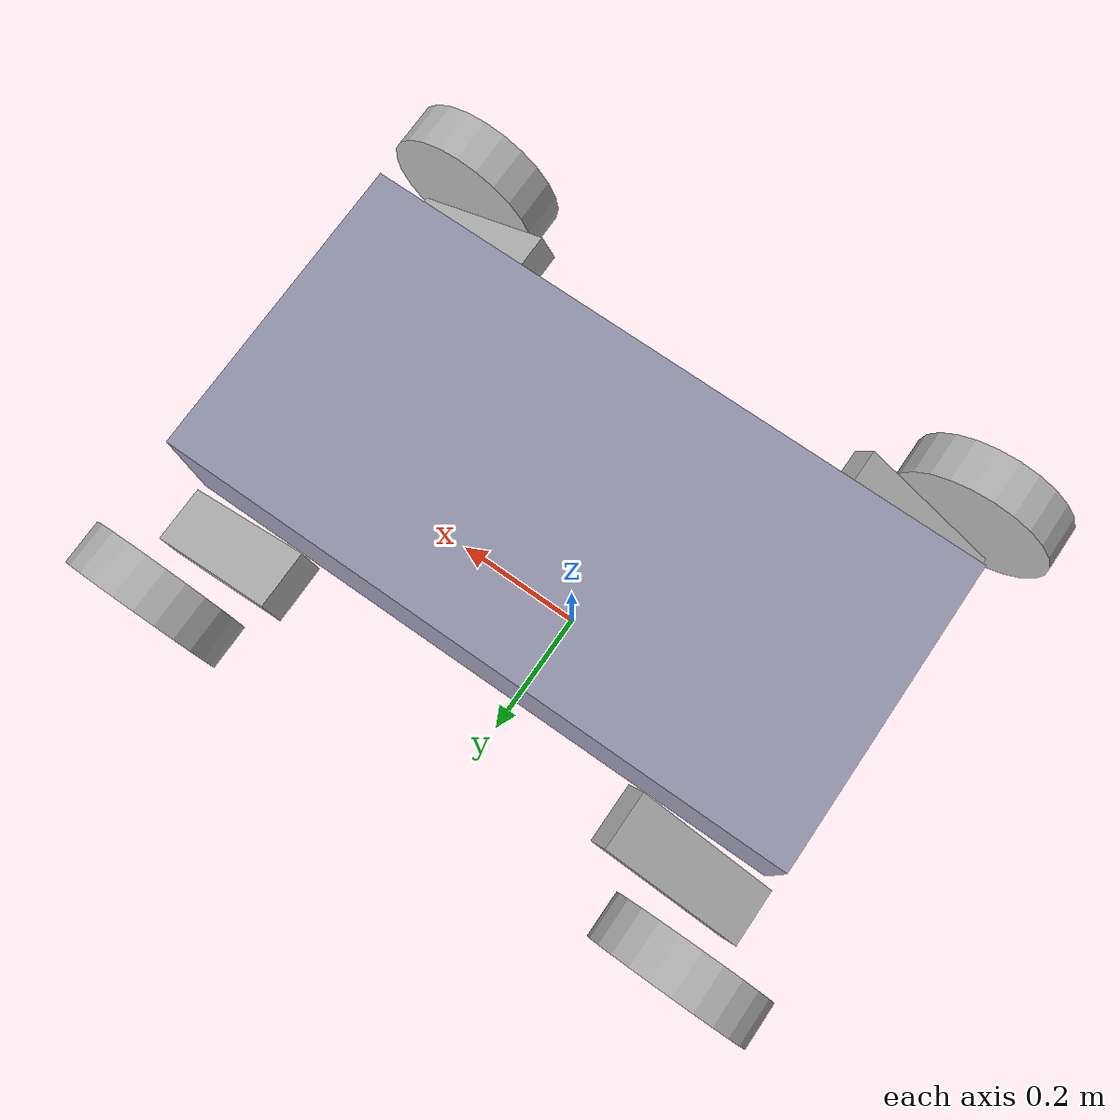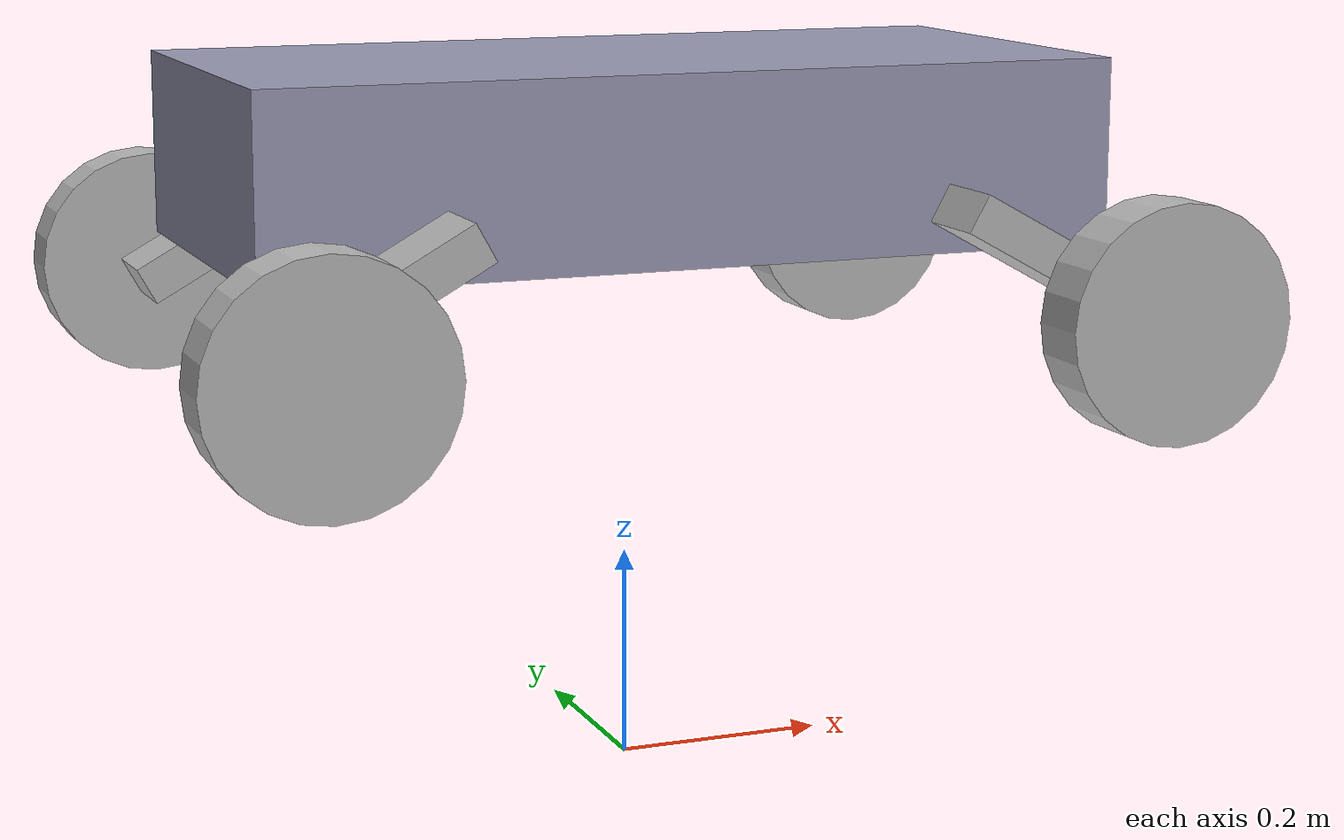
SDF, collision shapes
<?xml version="1.0" encoding="UTF-8"?>
<sdf version='1.9'>
  <model name='ELM4_chassis'>
    <pose>0 0 .5 0 0 0</pose>
    <self_collide>false</self_collide>
    <static>false</static>
    <link name="ELM4_chassis/Base">
      <inertial>
        <mass>18.71</mass>
        <inertia>
          <ixx>0.3986</ixx>
          <ixy>0</ixy>
          <ixz>0</ixz>
          <iyy>1.092</iyy>
          <iyz>0</iyz>
          <izz>1.337</izz>
        </inertia>
      </inertial>
      <gravity>true</gravity>
      <velocity_decay/>
      <collision name="ELM4_chassis/Base_Collision">
        <pose>0 0 .0875 0 0 0</pose>
        <geometry>
          <box>
            <size>0.8 0.389 0.171</size>
          </box>
        </geometry>
        <surface>
          <contact>
            <ode>
              <min_depth>0.001</min_depth>
              <max_vel>0</max_vel>
            </ode>
          </contact>
        </surface>
      </collision>
      <visual name="ELM4_chassis/BaseMetal">
        <pose>0 0 0 0 0 0</pose>
        <geometry>
          <mesh>
            <scale>1 1 1</scale>
            <uri>model://ELM4_chassis/meshes/BaseMetal.dae</uri>
          </mesh>
        </geometry>
      </visual>
      <visual name="ELM4_chassis/BaseRubber">
        <pose>0 0 0 0 0 0</pose>
        <geometry>
          <mesh>
            <scale>1 1 1</scale>
            <uri>model://ELM4_chassis/meshes/BaseRubber.dae</uri>
          </mesh>
        </geometry>
      </visual>
      <visual name="ELM4_chassis/BaseYellowPlasticTop">
        <pose>0 0 0 0 0 0</pose>
        <geometry>
          <mesh>
            <scale>1 1 1</scale>
            <uri>model://ELM4_chassis/meshes/BasePlastic.dae</uri>
          </mesh>
        </geometry>
      </visual>
      <visual name="ELM4_chassis/BaseClearPlasticGuard">
        <pose>0 0 0 0 0 0</pose>
        <cast_shadow>0</cast_shadow>
        <transparency>.5</transparency>
        <geometry>
          <mesh>
            <scale>1 1 1</scale>
            <uri>model://ELM4_chassis/meshes/BaseClear.dae</uri>
          </mesh>
        </geometry>
        <material>
          <diffuse>0.6 0.6 0.7 1.0</diffuse>
          <ambient>0.6 0.6 0.7 1.0</ambient>
        </material>
      </visual>

              <sensor name="camera_sensor" type="camera">
          <pose>1 0.2 0.5 0 0 0</pose>          <!-- Position of the camera on the robot -->

          <camera>
            <horizontal_fov>1.047</horizontal_fov>            <!-- Field of view in radians -->
            <image>
              <width>640</width>              <!-- Image width in pixels -->
              <height>480</height>              <!-- Image height in pixels -->
              <format>R8G8B8</format>              <!-- Image format (RGB in this case) -->
            </image>

            <clip>
              <near>0.1</near>              <!-- Minimum range (meters) -->
              <far>100.0</far>              <!-- Maximum range (meters) -->
            </clip>
          </camera>
          <topic>/camera_sensor/image_raw_arm</topic>
          <visualize>true</visualize>
          <update_rate>30</update_rate>          <!-- Frames per second -->

        </sensor>
    </link>
    <link name="ELM4_chassis/FrontLeftArm">
      <pose relative_to="ELM4_chassis/FrontLeftArmJoint">0 0 0 0 0 0</pose>
      <inertial>
        <mass>1.16</mass>
        <inertia>
          <ixx>0.006274</ixx>
          <ixy>0.002744</ixy>
          <ixz>0</ixz>
          <iyy>0.007678</iyy>
          <iyz>0</iyz>
          <izz>0.009408</izz>
        </inertia>
      </inertial>
      <gravity>true</gravity>
      <velocity_decay/>
      <visual name="ELM4_chassis/FrontLeftArmMetal_Visual">
        <pose>0 0 0 0 0 0</pose>
        <geometry>
          <mesh>
            <scale>1 1 1</scale>
            <uri>model://ELM4_chassis/meshes/ArmLeftMetal.dae</uri>
          </mesh>
        </geometry>
      </visual>
      <visual name="ELM4_chassis/FrontLeftArmPlastic_Visual">
        <pose>0 0 0 0 0 0</pose>
        <geometry>
          <mesh>
            <scale>1 1 1</scale>
            <uri>model://ELM4_chassis/meshes/ArmLeftPlastic.dae</uri>
          </mesh>
        </geometry>
      </visual>
      <collision name="ELM4_chassis/FrontLeftArm_Collision">
        <pose>0.055 0 -.0305 0 .505 0</pose>
        <geometry>
          <box>
            <size>.21 .075 .038</size>
          </box>
        </geometry>
        <surface>
          <contact>
            <ode>
              <min_depth>0.001</min_depth>
              <max_vel>0</max_vel>
            </ode>
          </contact>
        </surface>
      </collision>
    </link>
    <link name="ELM4_chassis/FrontLeftHubMotorWheel">
      <pose relative_to="ELM4_chassis/FrontLeftHubMotorWheelJoint">0 0 0 0 0 0</pose>
      <inertial>
        <mass>3.854</mass>
        <inertia>
          <ixx>0.009002</ixx>
          <ixy>0.0006021</ixy>
          <ixz>0</ixz>
          <iyy>0.01313</iyy>
          <iyz>0</iyz>
          <izz>0.009003</izz>
        </inertia>
      </inertial>
      <gravity>true</gravity>
      <velocity_decay/>
      <visual name="ELM4_chassis/FrontLeftHubMotorWheelMetal_Visual">
        <pose>0 0 0 0 0 3.14159265359</pose>
        <geometry>
          <mesh>
            <scale>1 1 1</scale>
            <uri>model://ELM4_chassis/meshes/HubMotor.dae</uri>
          </mesh>
        </geometry>
      </visual>
      <visual name="ELM4_chassis/FrontLeftHubMotorWheelRubber_Visual">
        <pose>0 0 0 0 0 3.14159265359</pose>
        <geometry>
          <mesh>
            <scale>1 1 1</scale>
            <uri>model://ELM4_chassis/meshes/RubberWheel.dae</uri>
          </mesh>
        </geometry>
      </visual>
      <collision name="ELM4_chassis/FrontLeftHubMotorWheel_Collision">
        <pose>0 0 0 1.57079632679 0 0</pose>
        <geometry>
          <cylinder>
            <radius>.108</radius>
            <length>.06</length>
          </cylinder>
        </geometry>
        <surface>
          <contact>
            <ode>
              <min_depth>0.001</min_depth>
              <max_vel>0</max_vel>
            </ode>
          </contact>
          <friction>
            <ode>
              <mu>1.0</mu>
              <mu2>0.8</mu2>
              <fdir1>1 0 0</fdir1>
            </ode>
          </friction>
        </surface>
      </collision>
    </link>
    <joint name="ELM4_chassis/FrontLeftArmJoint" type="revolute">
      <parent>ELM4_chassis/Base</parent>
      <child>ELM4_chassis/FrontLeftArm</child>
      <pose relative_to="ELM4_chassis/Base">.263 .238 .029 0 0 0</pose>
      <axis>
        <xyz>0 1 0</xyz>
        <limit>
          <lower>-0.5</lower>
          <upper>0.5</upper>
        </limit>
        <dynamics>
          <spring_reference>0</spring_reference>
          <spring_stiffness>300</spring_stiffness>
        </dynamics>
        <use_parent_model_frame>1</use_parent_model_frame>
      </axis>
    </joint>
    <joint name="ELM4_chassis/FrontLeftHubMotorWheelJoint" type="revolute">
      <parent>ELM4_chassis/FrontLeftArm</parent>
      <child>ELM4_chassis/FrontLeftHubMotorWheel</child>
      <pose relative_to="ELM4_chassis/FrontLeftArm">.11861 .095 -.07453 0 0 0</pose>
      <axis>
        <xyz>0 1 0</xyz>
        <limit>
          <lower>-1e+16</lower>
          <upper>1e+16</upper>
        </limit>
        <use_parent_model_frame>1</use_parent_model_frame>
      </axis>
    </joint>
        <link name="ELM4_chassis/BackLeftArm">
      <pose relative_to="ELM4_chassis/BackLeftArmJoint">0 0 0 0 0 0</pose>
      <inertial>
        <mass>1.16</mass>
        <inertia>
          <ixx>0.006274</ixx>
          <ixy>0.002744</ixy>
          <ixz>0</ixz>
          <iyy>0.007678</iyy>
          <iyz>0</iyz>
          <izz>0.009408</izz>
        </inertia>
      </inertial>
      <gravity>true</gravity>
      <velocity_decay/>
      <visual name="ELM4_chassis/BackLeftArmMetal_Visual">
        <pose>0 0 0 0 0 0</pose>
        <geometry>
          <mesh>
            <scale>1 1 1</scale>
            <uri>model://ELM4_chassis/meshes/ArmLeftMetal.dae</uri>
          </mesh>
        </geometry>
      </visual>
      <visual name="ELM4_chassis/BackLeftArmPlastic_Visual">
        <pose>0 0 0 0 0 0</pose>
        <geometry>
          <mesh>
            <scale>1 1 1</scale>
            <uri>model://ELM4_chassis/meshes/ArmLeftPlastic.dae</uri>
          </mesh>
        </geometry>
      </visual>
      <collision name="ELM4_chassis/BackLeftArm_Collision">
        <pose>0.055 0 -.0305 0 .505 0</pose>
        <geometry>
          <box>
            <size>.21 .075 .038</size>
          </box>
        </geometry>
        <surface>
          <contact>
            <ode>
              <min_depth>0.001</min_depth>
              <max_vel>0</max_vel>
            </ode>
          </contact>
        </surface>
      </collision>
    </link>
    <link name="ELM4_chassis/BackLeftHubMotorWheel">
      <pose relative_to="ELM4_chassis/BackLeftHubMotorWheelJoint">0 0 0 0 0 0</pose>
      <inertial>
        <mass>3.854</mass>
        <inertia>
          <ixx>0.009002</ixx>
          <ixy>0.0006021</ixy>
          <ixz>0</ixz>
          <iyy>0.01313</iyy>
          <iyz>0</iyz>
          <izz>0.009003</izz>
        </inertia>
      </inertial>
      <gravity>true</gravity>
      <velocity_decay/>
      <visual name="ELM4_chassis/BackLeftHubMotorWheelMetal_Visual">
        <pose>0 0 0 0 0 0</pose>
        <geometry>
          <mesh>
            <scale>1 1 1</scale>
            <uri>model://ELM4_chassis/meshes/HubMotor.dae</uri>
          </mesh>
        </geometry>
      </visual>
      <visual name="ELM4_chassis/BackLeftHubMotorWheelRubber_Visual">
        <pose>0 0 0 0 0 0</pose>
        <geometry>
          <mesh>
            <scale>1 1 1</scale>
            <uri>model://ELM4_chassis/meshes/RubberWheel.dae</uri>
          </mesh>
        </geometry>
      </visual>
      <collision name="ELM4_chassis/BackLeftHubMotorWheel_Collision">
        <pose>0 0 0 1.57079632679 0 0</pose>
        <geometry>
          <cylinder>
            <radius>.108</radius>
            <length>.06</length>
          </cylinder>
        </geometry>
        <surface>
          <contact>
            <ode>
              <min_depth>0.001</min_depth>
              <max_vel>0</max_vel>
            </ode>
          </contact>
          <friction>
            <ode>
              <mu>1.0</mu>
              <mu2>0.8</mu2>
              <fdir1>1 0 0</fdir1>
            </ode>
          </friction>
        </surface>
      </collision>
    </link>
    <joint name="ELM4_chassis/BackLeftArmJoint" type="revolute">
      <parent>ELM4_chassis/Base</parent>
      <child>ELM4_chassis/BackLeftArm</child>
      <pose relative_to="ELM4_chassis/Base">-.263 -.238 .029 0 0 3.14159265359</pose>
      <axis>
        <xyz>0 1 0</xyz>
        <limit>
          <lower>-0.5</lower>
          <upper>0.5</upper>
        </limit>
        <dynamics>
          <spring_reference>0</spring_reference>
          <spring_stiffness>300</spring_stiffness>
        </dynamics>
        <use_parent_model_frame>1</use_parent_model_frame>
      </axis>
    </joint>
    <joint name="ELM4_chassis/BackLeftHubMotorWheelJoint" type="revolute">
      <parent>ELM4_chassis/BackLeftArm</parent>
      <child>ELM4_chassis/BackLeftHubMotorWheel</child>
      <pose relative_to="ELM4_chassis/BackLeftArm">.11861 .095 -.07453 0 0 3.14159265359</pose>
      <axis>
        <xyz>0 1 0</xyz>
        <limit>
          <lower>-1e+16</lower>
          <upper>1e+16</upper>
        </limit>
        <use_parent_model_frame>1</use_parent_model_frame>
      </axis>
    </joint>
    <link name="ELM4_chassis/FrontRightArm">
      <pose relative_to="ELM4_chassis/FrontRightArmJoint">0 0 0 0 0 0</pose>
      <inertial>
        <mass>1.16</mass>
        <inertia>
          <ixx>0.006274</ixx>
          <ixy>0.002744</ixy>
          <ixz>0</ixz>
          <iyy>0.007678</iyy>
          <iyz>0</iyz>
          <izz>0.009408</izz>
        </inertia>
      </inertial>
      <gravity>true</gravity>
      <velocity_decay/>
      <visual name="ELM4_chassis/FrontRightArmMetal_Visual">
        <pose>0 0 0 0 -.017 0</pose>
        <geometry>
          <mesh>
            <scale>1 1 1</scale>
            <uri>model://ELM4_chassis/meshes/ArmRightMetal.dae</uri>
          </mesh>
        </geometry>
      </visual>
      <visual name="ELM4_chassis/FrontRightArmPlastic_Visual">
        <pose>0 0 0 0 -.017 0</pose>
        <geometry>
          <mesh>
            <scale>1 1 1</scale>
            <uri>model://ELM4_chassis/meshes/ArmRightPlastic.dae</uri>
          </mesh>
        </geometry>
      </visual>
      <collision name="ELM4_chassis/FrontRightArm_Collision">
        <pose>0.055 0 -.0305 0 .505 0</pose>
        <geometry>
          <box>
            <size>.21 .075 .038</size>
          </box>
        </geometry>
        <surface>
          <contact>
            <ode>
              <min_depth>0.001</min_depth>
              <max_vel>0</max_vel>
            </ode>
          </contact>
        </surface>
      </collision>
    </link>
    <link name="ELM4_chassis/FrontRightHubMotorWheel">
      <pose relative_to="ELM4_chassis/FrontRightHubMotorWheelJoint">0 0 0 0 0 0</pose>
      <inertial>
        <mass>3.854</mass>
        <inertia>
          <ixx>0.009002</ixx>
          <ixy>0.0006021</ixy>
          <ixz>0</ixz>
          <iyy>0.01313</iyy>
          <iyz>0</iyz>
          <izz>0.009003</izz>
        </inertia>
      </inertial>
      <gravity>true</gravity>
      <velocity_decay/>
      <visual name="ELM4_chassis/FrontRightHubMotorWheelMetal_Visual">
        <pose>0 0 0 0 0 0</pose>
        <geometry>
          <mesh>
            <scale>1 1 1</scale>
            <uri>model://ELM4_chassis/meshes/HubMotor.dae</uri>
          </mesh>
        </geometry>
      </visual>
      <visual name="ELM4_chassis/FrontRightHubMotorWheelRubber_Visual">
        <pose>0 0 0 0 0 0</pose>
        <geometry>
          <mesh>
            <scale>1 1 1</scale>
            <uri>model://ELM4_chassis/meshes/RubberWheel.dae</uri>
          </mesh>
        </geometry>
      </visual>
      <collision name="ELM4_chassis/FrontRightHubMotorWheel_Collision">
        <pose>0 0 0 1.57079632679 0 0</pose>
        <geometry>
          <cylinder>
            <radius>.108</radius>
            <length>.06</length>
          </cylinder>
        </geometry>
        <surface>
          <contact>
            <ode>
              <min_depth>0.001</min_depth>
              <max_vel>0</max_vel>
            </ode>
          </contact>
          <friction>
            <ode>
              <mu>1.0</mu>
              <mu2>0.8</mu2>
              <fdir1>1 0 0</fdir1>
            </ode>
          </friction>
        </surface>
      </collision>
    </link>
    <joint name="ELM4_chassis/FrontRightArmJoint" type="revolute">
      <parent>ELM4_chassis/Base</parent>
      <child>ELM4_chassis/FrontRightArm</child>
      <pose relative_to="ELM4_chassis/Base">.263 -.238 .029 0 0 0</pose>
      <axis>
        <xyz>0 1 0</xyz>
        <limit>
          <lower>-0.5</lower>
          <upper>0.5</upper>
        </limit>
        <dynamics>
          <spring_reference>0</spring_reference>
          <spring_stiffness>300</spring_stiffness>
        </dynamics>
        <use_parent_model_frame>1</use_parent_model_frame>
      </axis>
    </joint>
    <joint name="ELM4_chassis/FrontRightHubMotorWheelJoint" type="revolute">
      <parent>ELM4_chassis/FrontRightArm</parent>
      <child>ELM4_chassis/FrontRightHubMotorWheel</child>
      <pose relative_to="ELM4_chassis/FrontRightArm">.11861 -.095 -.07453 0 0 0</pose>
      <axis>
        <xyz>0 1 0</xyz>
        <limit>
          <lower>-1e+16</lower>
          <upper>1e+16</upper>
        </limit>
        <use_parent_model_frame>1</use_parent_model_frame>
      </axis>
    </joint>
        <link name="ELM4_chassis/BackRightArm">
      <pose relative_to="ELM4_chassis/BackRightArmJoint">0 0 0 0 0 0</pose>
      <inertial>
        <mass>1.16</mass>
        <inertia>
          <ixx>0.006274</ixx>
          <ixy>0.002744</ixy>
          <ixz>0</ixz>
          <iyy>0.007678</iyy>
          <iyz>0</iyz>
          <izz>0.009408</izz>
        </inertia>
      </inertial>
      <gravity>true</gravity>
      <velocity_decay/>
      <visual name="ELM4_chassis/BackRightArmMetal_Visual">
        <pose>0 0 0 0 -.017 0</pose>
        <geometry>
          <mesh>
            <scale>1 1 1</scale>
            <uri>model://ELM4_chassis/meshes/ArmRightMetal.dae</uri>
          </mesh>
        </geometry>
      </visual>
      <visual name="ELM4_chassis/BackRightArmPlastic_Visual">
        <pose>0 0 0 0 -.017 0</pose>
        <geometry>
          <mesh>
            <scale>1 1 1</scale>
            <uri>model://ELM4_chassis/meshes/ArmRightPlastic.dae</uri>
          </mesh>
        </geometry>
      </visual>
      <collision name="ELM4_chassis/BackRightArm_Collision">
        <pose>0.055 0 -.0305 0 .505 0</pose>
        <geometry>
          <box>
            <size>.21 .075 .038</size>
          </box>
        </geometry>
        <surface>
          <contact>
            <ode>
              <min_depth>0.001</min_depth>
              <max_vel>0</max_vel>
            </ode>
          </contact>
        </surface>
      </collision>
    </link>
    <link name="ELM4_chassis/BackRightHubMotorWheel">
      <pose relative_to="ELM4_chassis/BackRightHubMotorWheelJoint">0 0 0 0 0 0</pose>
      <inertial>
        <mass>3.854</mass>
        <inertia>
          <ixx>0.009002</ixx>
          <ixy>0.0006021</ixy>
          <ixz>0</ixz>
          <iyy>0.01313</iyy>
          <iyz>0</iyz>
          <izz>0.009003</izz>
        </inertia>
      </inertial>
      <gravity>true</gravity>
      <velocity_decay/>
      <visual name="ELM4_chassis/BackRightHubMotorWheelMetal_Visual">
        <pose>0 0 0 0 0 3.14159265359</pose>
        <geometry>
          <mesh>
            <scale>1 1 1</scale>
            <uri>model://ELM4_chassis/meshes/HubMotor.dae</uri>
          </mesh>
        </geometry>
      </visual>
      <visual name="ELM4_chassis/BackRightHubMotorWheelRubber_Visual">
        <pose>0 0 0 0 0 3.14159265359</pose>
        <geometry>
          <mesh>
            <scale>1 1 1</scale>
            <uri>model://ELM4_chassis/meshes/RubberWheel.dae</uri>
          </mesh>
        </geometry>
      </visual>
      <collision name="ELM4_chassis/BackRightHubMotorWheel_Collision">
        <pose>0 0 0 1.57079632679 0 0</pose>
        <geometry>
          <cylinder>
            <radius>.108</radius>
            <length>.06</length>
          </cylinder>
        </geometry>
        <surface>
          <contact>
            <ode>
              <min_depth>0.001</min_depth>
              <max_vel>0</max_vel>
            </ode>
          </contact>
          <friction>
            <ode>
              <mu>1.0</mu>
              <mu2>0.8</mu2>
              <fdir1>1 0 0</fdir1>
            </ode>
          </friction>
        </surface>
      </collision>
    </link>
    <joint name="ELM4_chassis/BackRightArmJoint" type="revolute">
      <parent>ELM4_chassis/Base</parent>
      <child>ELM4_chassis/BackRightArm</child>
      <pose relative_to="ELM4_chassis/Base">-.263 .238 .029 0 0 3.14159265359</pose>
      <axis>
        <xyz>0 1 0</xyz>
        <limit>
          <lower>-0.5</lower>
          <upper>0.5</upper>
        </limit>
        <dynamics>
          <spring_reference>0</spring_reference>
          <spring_stiffness>300</spring_stiffness>
        </dynamics>
        <use_parent_model_frame>1</use_parent_model_frame>
      </axis>
    </joint>
    <joint name="ELM4_chassis/BackRightHubMotorWheelJoint" type="revolute">
      <parent>ELM4_chassis/BackRightArm</parent>
      <child>ELM4_chassis/BackRightHubMotorWheel</child>
      <pose relative_to="ELM4_chassis/BackRightArm">.11861 -.095 -.07453 0 0 3.14159265359</pose>
      <axis>
        <xyz>0 1 0</xyz>
        <limit>
          <lower>-1e+16</lower>
          <upper>1e+16</upper>
        </limit>
        <use_parent_model_frame>1</use_parent_model_frame>
      </axis>
    </joint>
    <plugin filename="libignition-gazebo-diff-drive-system.so" name="ignition::gazebo::systems::DiffDrive">
      <right_joint>ELM4_chassis/BackLeftHubMotorWheelJoint</right_joint>
      <left_joint>ELM4_chassis/FrontLeftHubMotorWheelJoint</left_joint>
      <left_joint>ELM4_chassis/BackRightHubMotorWheelJoint</left_joint>
      <right_joint>ELM4_chassis/FrontRightHubMotorWheelJoint</right_joint>
      <wheel_separation>0.667</wheel_separation>
      <wheel_radius>0.108</wheel_radius>
      <topic>cmd_vel</topic>
    </plugin>

    <!-- Add yaw left functionality -->
    <plugin filename="gz-sim-triggered-publisher-system" name="gz::sim::systems::TriggeredPublisher">
      <input type="gz.msgs.Int32" topic="/keyboard/keypress">
        <match field="data">16777234</match> <!-- Key for left arrow key -->
      </input>
      <output type="gz.msgs.Twist" topic="/cmd_vel">
        linear: {x: 0.0}, angular: {z: 2} <!-- Yaw left -->
      </output>
    </plugin>

    <!-- Add yaw right functionality -->
    <plugin filename="gz-sim-triggered-publisher-system" name="gz::sim::systems::TriggeredPublisher">
      <input type="gz.msgs.Int32" topic="/keyboard/keypress">
        <match field="data">16777236</match> <!-- Key for right arrow key -->
      </input>
      <output type="gz.msgs.Twist" topic="/cmd_vel">
        linear: {x: 0.0}, angular: {z: -2} <!-- Yaw right -->
      </output>
    </plugin>

    <!-- Moving Forward -->
    <plugin filename="gz-sim-triggered-publisher-system" name="gz::sim::systems::TriggeredPublisher">
      <input type="gz.msgs.Int32" topic="/keyboard/keypress">
        <match field="data">16777235</match> <!-- Key for up arrow key -->
      </input>
      <output type="gz.msgs.Twist" topic="/cmd_vel">
        linear: {x: 2}, angular: {z: 0.0} <!-- Move forward -->
      </output>
    </plugin>

    <!-- Moving Backward -->
    <plugin filename="gz-sim-triggered-publisher-system" name="gz::sim::systems::TriggeredPublisher">
      <input type="gz.msgs.Int32" topic="/keyboard/keypress">
        <match field="data">16777237</match> <!-- Key for down arrow key -->
      </input>
      <output type="gz.msgs.Twist" topic="/cmd_vel">
        linear: {x: -2}, angular: {z: 0.0} <!-- Move backward -->
      </output>
    </plugin>

    <!-- Brake -->
    <plugin filename="gz-sim-triggered-publisher-system" name="gz::sim::systems::TriggeredPublisher">
      <input type="gz.msgs.Int32" topic="/keyboard/keypress">
        <match field="data">83</match> <!-- Key for 'S' key -->
      </input>
      <output type="gz.msgs.Twist" topic="/cmd_vel">
        linear: {x: 0}, angular: {z: 0.0} <!-- Brake -->
      </output>
    </plugin>

    <!-- Stop on collision -->
    <plugin filename="gz-sim-triggered-publisher-system" name="gz::sim::systems::TriggeredPublisher">
      <input type="gz.msgs.Boolean" topic="/wall/touched">
        <match>data: true</match>
      </input>
      <output type="gz.msgs.Twist" topic="/cmd_vel">
        linear: {x: 0.0}, angular: {z: 0.0} <!-- Stop -->
      </output>
    </plugin>
  </model>
</sdf>
